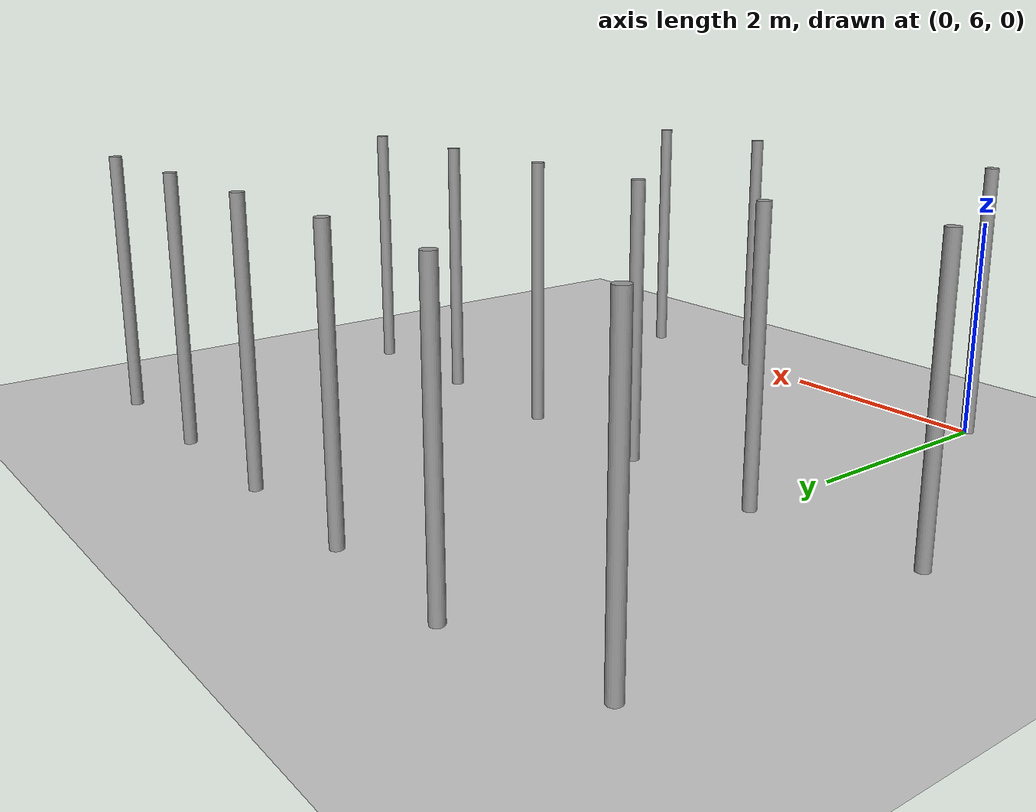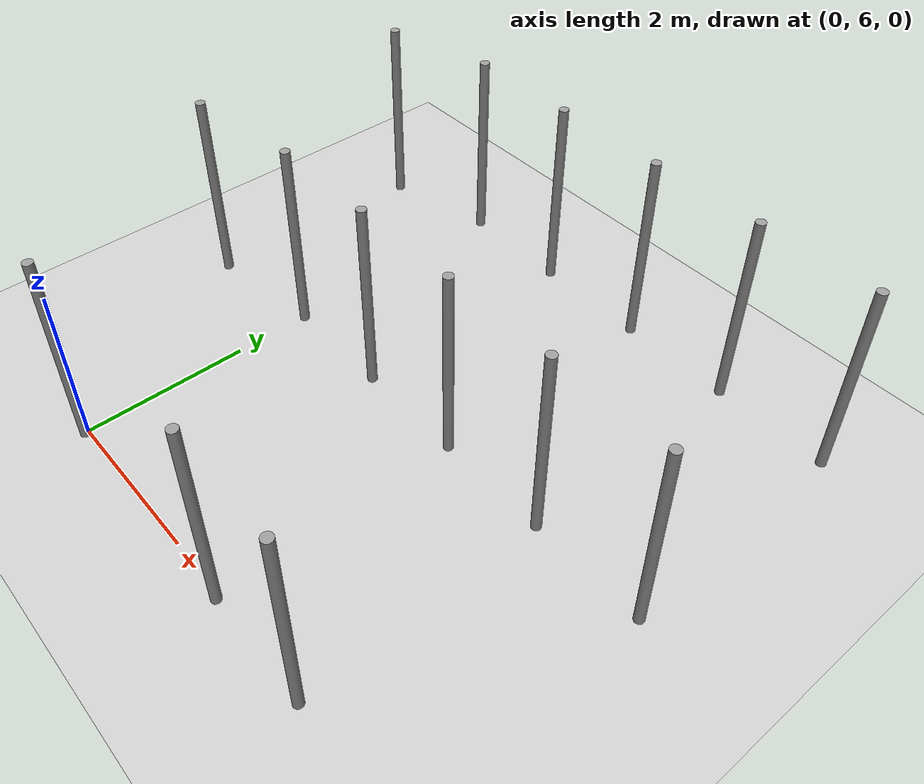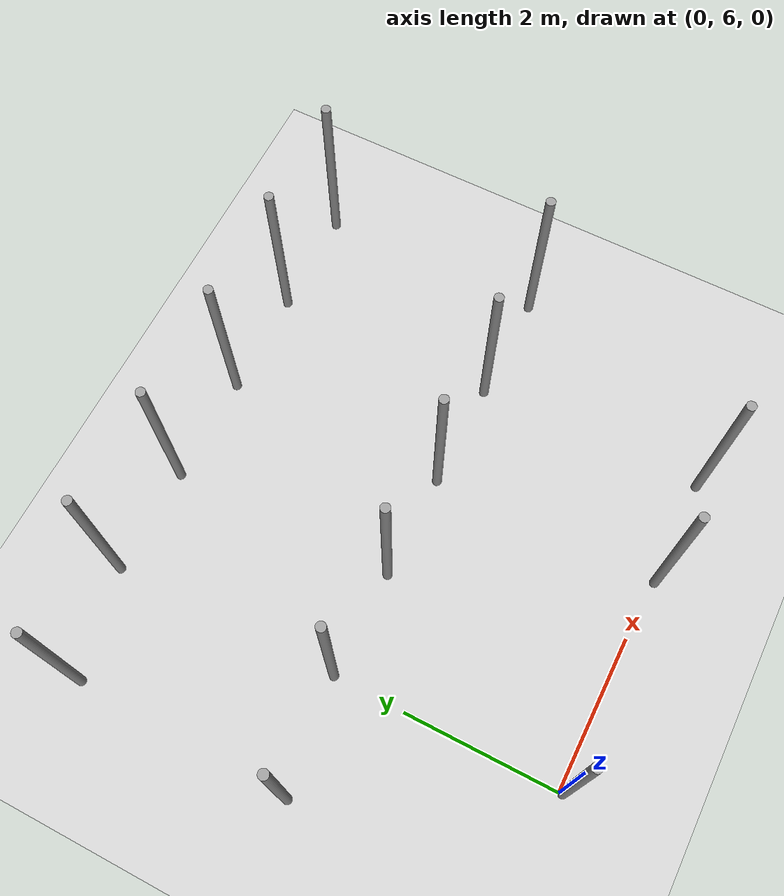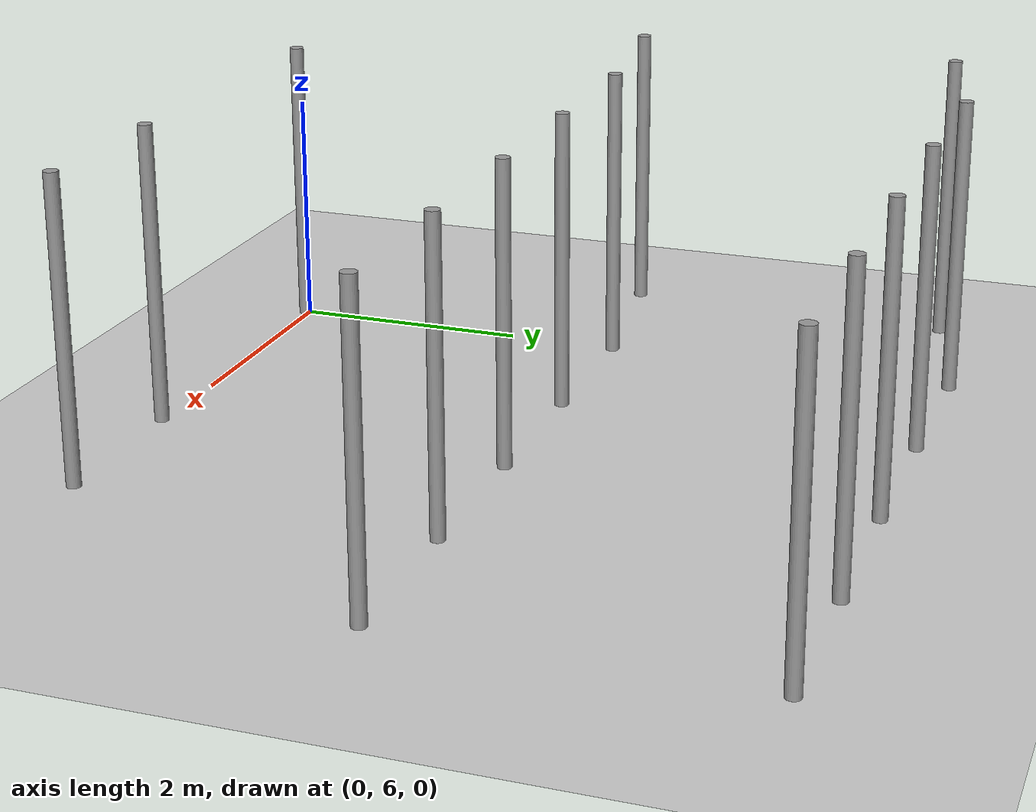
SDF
<sdf version="1.6">
 <world name="default">
  <model name="ground_plane">
   <static>1</static>
   <link name="link">
    <collision name="collision">
     <geometry><plane><normal>0 0 1</normal><size>100 100</size></plane></geometry>
     <surface><friction><ode><mu>100</mu><mu2>50</mu2></ode></friction></surface>
    </collision>
    <visual name="visual">
     <cast_shadows>0</cast_shadows>
     <geometry><plane><normal>0 0 1</normal><size>100 100</size></plane></geometry>
     <material>
      <script><uri>file://media/materials/scripts/gazebo.material</uri><name>Gazebo/Grey</name></script>
     </material>
    </visual>
   </link>
  </model>
  <model name="pole">
   <link name="link_0">
    <inertial>
     <mass>0.0364582</mass>
     <inertia>
      <ixx>0.00312124</ixx>
      <ixy>0</ixy>
      <ixz>0</ixz>
      <iyy>0.00312124</iyy>
      <iyz>0</iyz>
      <izz>0.00016615</izz>
     </inertia>
    </inertial>
    <visual name="visual">
     <geometry><cylinder><radius>0.06</radius><length>2.5</length></cylinder></geometry>
     <material>
      <lighting>1</lighting>
      <script><uri>file://media/materials/scripts/gazebo.material</uri><name>Gazebo/Grey</name></script>
      <ambient>0.3 0.3 0.3 1</ambient>
      <diffuse>0.7 0.7 0.7 1</diffuse>
      <specular>0.01 0.01 0.01 1</specular>
      <emissive>0 0 0 1</emissive>
      <shader type="vertex"><normal_map>__default__</normal_map></shader>
     </material>
    </visual>
    <collision name="collision">
     <geometry><cylinder><radius>0.06</radius><length>2.5</length></cylinder></geometry>
     <surface>
      <friction>
       <ode><mu>1</mu><mu2>1</mu2><fdir1>0 0 0</fdir1><slip1>0</slip1><slip2>0</slip2></ode>
       <torsional>
        <coefficient>1</coefficient>
        <patch_radius>0</patch_radius>
        <surface_radius>0</surface_radius>
        <use_patch_radius>1</use_patch_radius>
        <ode><slip>0</slip></ode>
       </torsional>
      </friction>
      <bounce><restitution_coefficient>0</restitution_coefficient><threshold>1e+06</threshold></bounce>
      <contact>
       <collide_without_contact>0</collide_without_contact>
       <collide_without_contact_bitmask>1</collide_without_contact_bitmask>
       <collide_bitmask>1</collide_bitmask>
       <ode>
        <soft_cfm>0</soft_cfm>
        <soft_erp>0.2</soft_erp>
        <kp>1e+13</kp>
        <kd>1</kd>
        <max_vel>0.01</max_vel>
        <min_depth>0</min_depth>
       </ode>
       <bullet>
        <split_impulse>1</split_impulse>
        <split_impulse_penetration_threshold>-0.01</split_impulse_penetration_threshold>
        <soft_cfm>0</soft_cfm>
        <soft_erp>0.2</soft_erp>
        <kp>1e+13</kp>
        <kd>1</kd>
       </bullet>
      </contact>
     </surface>
    </collision>
   </link>
   <static>0</static>
   <pose>0.00672 5.96133 1.24999 -0 1e-06 -0.016912</pose>
  </model>
  <model name="pole_0">
   <link name="link_0">
    <inertial>
     <mass>0.0364582</mass>
     <inertia>
      <ixx>0.00312124</ixx>
      <ixy>0</ixy>
      <ixz>0</ixz>
      <iyy>0.00312124</iyy>
      <iyz>0</iyz>
      <izz>0.00016615</izz>
     </inertia>
    </inertial>
    <visual name="visual">
     <geometry><cylinder><radius>0.06</radius><length>2.5</length></cylinder></geometry>
     <material>
      <lighting>1</lighting>
      <script><uri>file://media/materials/scripts/gazebo.material</uri><name>Gazebo/Grey</name></script>
      <ambient>0.3 0.3 0.3 1</ambient>
      <diffuse>0.7 0.7 0.7 1</diffuse>
      <specular>0.01 0.01 0.01 1</specular>
      <emissive>0 0 0 1</emissive>
      <shader type="vertex"><normal_map>__default__</normal_map></shader>
     </material>
    </visual>
    <collision name="collision">
     <geometry><cylinder><radius>0.06</radius><length>2.5</length></cylinder></geometry>
     <surface>
      <friction>
       <ode><mu>1</mu><mu2>1</mu2><fdir1>0 0 0</fdir1><slip1>0</slip1><slip2>0</slip2></ode>
       <torsional>
        <coefficient>1</coefficient>
        <patch_radius>0</patch_radius>
        <surface_radius>0</surface_radius>
        <use_patch_radius>1</use_patch_radius>
        <ode><slip>0</slip></ode>
       </torsional>
      </friction>
      <bounce><restitution_coefficient>0</restitution_coefficient><threshold>1e+06</threshold></bounce>
      <contact>
       <collide_without_contact>0</collide_without_contact>
       <collide_without_contact_bitmask>1</collide_without_contact_bitmask>
       <collide_bitmask>1</collide_bitmask>
       <ode>
        <soft_cfm>0</soft_cfm>
        <soft_erp>0.2</soft_erp>
        <kp>1e+13</kp>
        <kd>1</kd>
        <max_vel>0.01</max_vel>
        <min_depth>0</min_depth>
       </ode>
       <bullet>
        <split_impulse>1</split_impulse>
        <split_impulse_penetration_threshold>-0.01</split_impulse_penetration_threshold>
        <soft_cfm>0</soft_cfm>
        <soft_erp>0.2</soft_erp>
        <kp>1e+13</kp>
        <kd>1</kd>
       </bullet>
      </contact>
     </surface>
    </collision>
   </link>
   <static>0</static>
   <pose>0.01352 8.94146 1.24999 -0 2e-06 -0.019336</pose>
  </model>
  <model name="pole_1">
   <link name="link_0">
    <inertial>
     <mass>0.0364582</mass>
     <inertia>
      <ixx>0.00312124</ixx>
      <ixy>0</ixy>
      <ixz>0</ixz>
      <iyy>0.00312124</iyy>
      <iyz>0</iyz>
      <izz>0.00016615</izz>
     </inertia>
    </inertial>
    <visual name="visual">
     <geometry><cylinder><radius>0.06</radius><length>2.5</length></cylinder></geometry>
     <material>
      <lighting>1</lighting>
      <script><uri>file://media/materials/scripts/gazebo.material</uri><name>Gazebo/Grey</name></script>
      <ambient>0.3 0.3 0.3 1</ambient>
      <diffuse>0.7 0.7 0.7 1</diffuse>
      <specular>0.01 0.01 0.01 1</specular>
      <emissive>0 0 0 1</emissive>
      <shader type="vertex"><normal_map>__default__</normal_map></shader>
     </material>
    </visual>
    <collision name="collision">
     <geometry><cylinder><radius>0.06</radius><length>2.5</length></cylinder></geometry>
     <surface>
      <friction>
       <ode><mu>1</mu><mu2>1</mu2><fdir1>0 0 0</fdir1><slip1>0</slip1><slip2>0</slip2></ode>
       <torsional>
        <coefficient>1</coefficient>
        <patch_radius>0</patch_radius>
        <surface_radius>0</surface_radius>
        <use_patch_radius>1</use_patch_radius>
        <ode><slip>0</slip></ode>
       </torsional>
      </friction>
      <bounce><restitution_coefficient>0</restitution_coefficient><threshold>1e+06</threshold></bounce>
      <contact>
       <collide_without_contact>0</collide_without_contact>
       <collide_without_contact_bitmask>1</collide_without_contact_bitmask>
       <collide_bitmask>1</collide_bitmask>
       <ode>
        <soft_cfm>0</soft_cfm>
        <soft_erp>0.2</soft_erp>
        <kp>1e+13</kp>
        <kd>1</kd>
        <max_vel>0.01</max_vel>
        <min_depth>0</min_depth>
       </ode>
       <bullet>
        <split_impulse>1</split_impulse>
        <split_impulse_penetration_threshold>-0.01</split_impulse_penetration_threshold>
        <soft_cfm>0</soft_cfm>
        <soft_erp>0.2</soft_erp>
        <kp>1e+13</kp>
        <kd>1</kd>
       </bullet>
      </contact>
     </surface>
    </collision>
   </link>
   <static>0</static>
   <pose>-0.008115 11.9213 1.24999 -1e-06 -0 -0.018597</pose>
  </model>
  <model name="pole_13">
   <link name="link_0">
    <inertial>
     <mass>0.0364582</mass>
     <inertia>
      <ixx>0.00312124</ixx>
      <ixy>0</ixy>
      <ixz>0</ixz>
      <iyy>0.00312124</iyy>
      <iyz>0</iyz>
      <izz>0.00016615</izz>
     </inertia>
    </inertial>
    <visual name="visual">
     <geometry><cylinder><radius>0.06</radius><length>2.5</length></cylinder></geometry>
     <material>
      <lighting>1</lighting>
      <script><uri>file://media/materials/scripts/gazebo.material</uri><name>Gazebo/Grey</name></script>
      <ambient>0.3 0.3 0.3 1</ambient>
      <diffuse>0.7 0.7 0.7 1</diffuse>
      <specular>0.01 0.01 0.01 1</specular>
      <emissive>0 0 0 1</emissive>
      <shader type="vertex"><normal_map>__default__</normal_map></shader>
     </material>
    </visual>
    <collision name="collision">
     <geometry><cylinder><radius>0.06</radius><length>2.5</length></cylinder></geometry>
     <surface>
      <friction>
       <ode><mu>1</mu><mu2>1</mu2><fdir1>0 0 0</fdir1><slip1>0</slip1><slip2>0</slip2></ode>
       <torsional>
        <coefficient>1</coefficient>
        <patch_radius>0</patch_radius>
        <surface_radius>0</surface_radius>
        <use_patch_radius>1</use_patch_radius>
        <ode><slip>0</slip></ode>
       </torsional>
      </friction>
      <bounce><restitution_coefficient>0</restitution_coefficient><threshold>1e+06</threshold></bounce>
      <contact>
       <collide_without_contact>0</collide_without_contact>
       <collide_without_contact_bitmask>1</collide_without_contact_bitmask>
       <collide_bitmask>1</collide_bitmask>
       <ode>
        <soft_cfm>0</soft_cfm>
        <soft_erp>0.2</soft_erp>
        <kp>1e+13</kp>
        <kd>1</kd>
        <max_vel>0.01</max_vel>
        <min_depth>0</min_depth>
       </ode>
       <bullet>
        <split_impulse>1</split_impulse>
        <split_impulse_penetration_threshold>-0.01</split_impulse_penetration_threshold>
        <soft_cfm>0</soft_cfm>
        <soft_erp>0.2</soft_erp>
        <kp>1e+13</kp>
        <kd>1</kd>
       </bullet>
      </contact>
     </surface>
    </collision>
   </link>
   <static>0</static>
   <pose>2.80802 5.9612 1.24999 -1e-06 1e-06 -0.012267</pose>
  </model>
  <model name="pole_14">
   <link name="link_0">
    <inertial>
     <mass>0.0364582</mass>
     <inertia>
      <ixx>0.00312124</ixx>
      <ixy>0</ixy>
      <ixz>0</ixz>
      <iyy>0.00312124</iyy>
      <iyz>0</iyz>
      <izz>0.00016615</izz>
     </inertia>
    </inertial>
    <visual name="visual">
     <geometry><cylinder><radius>0.06</radius><length>2.5</length></cylinder></geometry>
     <material>
      <lighting>1</lighting>
      <script><uri>file://media/materials/scripts/gazebo.material</uri><name>Gazebo/Grey</name></script>
      <ambient>0.3 0.3 0.3 1</ambient>
      <diffuse>0.7 0.7 0.7 1</diffuse>
      <specular>0.01 0.01 0.01 1</specular>
      <emissive>0 0 0 1</emissive>
      <shader type="vertex"><normal_map>__default__</normal_map></shader>
     </material>
    </visual>
    <collision name="collision">
     <geometry><cylinder><radius>0.06</radius><length>2.5</length></cylinder></geometry>
     <surface>
      <friction>
       <ode><mu>1</mu><mu2>1</mu2><fdir1>0 0 0</fdir1><slip1>0</slip1><slip2>0</slip2></ode>
       <torsional>
        <coefficient>1</coefficient>
        <patch_radius>0</patch_radius>
        <surface_radius>0</surface_radius>
        <use_patch_radius>1</use_patch_radius>
        <ode><slip>0</slip></ode>
       </torsional>
      </friction>
      <bounce><restitution_coefficient>0</restitution_coefficient><threshold>1e+06</threshold></bounce>
      <contact>
       <collide_without_contact>0</collide_without_contact>
       <collide_without_contact_bitmask>1</collide_without_contact_bitmask>
       <collide_bitmask>1</collide_bitmask>
       <ode>
        <soft_cfm>0</soft_cfm>
        <soft_erp>0.2</soft_erp>
        <kp>1e+13</kp>
        <kd>1</kd>
        <max_vel>0.01</max_vel>
        <min_depth>0</min_depth>
       </ode>
       <bullet>
        <split_impulse>1</split_impulse>
        <split_impulse_penetration_threshold>-0.01</split_impulse_penetration_threshold>
        <soft_cfm>0</soft_cfm>
        <soft_erp>0.2</soft_erp>
        <kp>1e+13</kp>
        <kd>1</kd>
       </bullet>
      </contact>
     </surface>
    </collision>
   </link>
   <static>0</static>
   <pose>4.21951 5.96117 1.25 -1e-06 1e-06 -0.011841</pose>
  </model>
  <model name="pole_16">
   <link name="link_0">
    <inertial>
     <mass>0.0364582</mass>
     <inertia>
      <ixx>0.00312124</ixx>
      <ixy>0</ixy>
      <ixz>0</ixz>
      <iyy>0.00312124</iyy>
      <iyz>0</iyz>
      <izz>0.00016615</izz>
     </inertia>
    </inertial>
    <visual name="visual">
     <geometry><cylinder><radius>0.06</radius><length>2.5</length></cylinder></geometry>
     <material>
      <lighting>1</lighting>
      <script><uri>file://media/materials/scripts/gazebo.material</uri><name>Gazebo/Grey</name></script>
      <ambient>0.3 0.3 0.3 1</ambient>
      <diffuse>0.7 0.7 0.7 1</diffuse>
      <specular>0.01 0.01 0.01 1</specular>
      <emissive>0 0 0 1</emissive>
      <shader type="vertex"><normal_map>__default__</normal_map></shader>
     </material>
    </visual>
    <collision name="collision">
     <geometry><cylinder><radius>0.06</radius><length>2.5</length></cylinder></geometry>
     <surface>
      <friction>
       <ode><mu>1</mu><mu2>1</mu2><fdir1>0 0 0</fdir1><slip1>0</slip1><slip2>0</slip2></ode>
       <torsional>
        <coefficient>1</coefficient>
        <patch_radius>0</patch_radius>
        <surface_radius>0</surface_radius>
        <use_patch_radius>1</use_patch_radius>
        <ode><slip>0</slip></ode>
       </torsional>
      </friction>
      <bounce><restitution_coefficient>0</restitution_coefficient><threshold>1e+06</threshold></bounce>
      <contact>
       <collide_without_contact>0</collide_without_contact>
       <collide_without_contact_bitmask>1</collide_without_contact_bitmask>
       <collide_bitmask>1</collide_bitmask>
       <ode>
        <soft_cfm>0</soft_cfm>
        <soft_erp>0.2</soft_erp>
        <kp>1e+13</kp>
        <kd>1</kd>
        <max_vel>0.01</max_vel>
        <min_depth>0</min_depth>
       </ode>
       <bullet>
        <split_impulse>1</split_impulse>
        <split_impulse_penetration_threshold>-0.01</split_impulse_penetration_threshold>
        <soft_cfm>0</soft_cfm>
        <soft_erp>0.2</soft_erp>
        <kp>1e+13</kp>
        <kd>1</kd>
       </bullet>
      </contact>
     </surface>
    </collision>
   </link>
   <static>0</static>
   <pose>1.41313 8.94082 1.25 0 1e-06 -0.013511</pose>
  </model>
  <model name="pole_17">
   <link name="link_0">
    <inertial>
     <mass>0.0364582</mass>
     <inertia>
      <ixx>0.00312124</ixx>
      <ixy>0</ixy>
      <ixz>0</ixz>
      <iyy>0.00312124</iyy>
      <iyz>0</iyz>
      <izz>0.00016615</izz>
     </inertia>
    </inertial>
    <visual name="visual">
     <geometry><cylinder><radius>0.06</radius><length>2.5</length></cylinder></geometry>
     <material>
      <lighting>1</lighting>
      <script><uri>file://media/materials/scripts/gazebo.material</uri><name>Gazebo/Grey</name></script>
      <ambient>0.3 0.3 0.3 1</ambient>
      <diffuse>0.7 0.7 0.7 1</diffuse>
      <specular>0.01 0.01 0.01 1</specular>
      <emissive>0 0 0 1</emissive>
      <shader type="vertex"><normal_map>__default__</normal_map></shader>
     </material>
    </visual>
    <collision name="collision">
     <geometry><cylinder><radius>0.06</radius><length>2.5</length></cylinder></geometry>
     <surface>
      <friction>
       <ode><mu>1</mu><mu2>1</mu2><fdir1>0 0 0</fdir1><slip1>0</slip1><slip2>0</slip2></ode>
       <torsional>
        <coefficient>1</coefficient>
        <patch_radius>0</patch_radius>
        <surface_radius>0</surface_radius>
        <use_patch_radius>1</use_patch_radius>
        <ode><slip>0</slip></ode>
       </torsional>
      </friction>
      <bounce><restitution_coefficient>0</restitution_coefficient><threshold>1e+06</threshold></bounce>
      <contact>
       <collide_without_contact>0</collide_without_contact>
       <collide_without_contact_bitmask>1</collide_without_contact_bitmask>
       <collide_bitmask>1</collide_bitmask>
       <ode>
        <soft_cfm>0</soft_cfm>
        <soft_erp>0.2</soft_erp>
        <kp>1e+13</kp>
        <kd>1</kd>
        <max_vel>0.01</max_vel>
        <min_depth>0</min_depth>
       </ode>
       <bullet>
        <split_impulse>1</split_impulse>
        <split_impulse_penetration_threshold>-0.01</split_impulse_penetration_threshold>
        <soft_cfm>0</soft_cfm>
        <soft_erp>0.2</soft_erp>
        <kp>1e+13</kp>
        <kd>1</kd>
       </bullet>
      </contact>
     </surface>
    </collision>
   </link>
   <static>0</static>
   <pose>2.79987 8.94083 1.25 1e-06 1e-06 -0.010654</pose>
  </model>
  <model name="pole_18">
   <link name="link_0">
    <inertial>
     <mass>0.0364582</mass>
     <inertia>
      <ixx>0.00312124</ixx>
      <ixy>0</ixy>
      <ixz>0</ixz>
      <iyy>0.00312124</iyy>
      <iyz>0</iyz>
      <izz>0.00016615</izz>
     </inertia>
    </inertial>
    <visual name="visual">
     <geometry><cylinder><radius>0.06</radius><length>2.5</length></cylinder></geometry>
     <material>
      <lighting>1</lighting>
      <script><uri>file://media/materials/scripts/gazebo.material</uri><name>Gazebo/Grey</name></script>
      <ambient>0.3 0.3 0.3 1</ambient>
      <diffuse>0.7 0.7 0.7 1</diffuse>
      <specular>0.01 0.01 0.01 1</specular>
      <emissive>0 0 0 1</emissive>
      <shader type="vertex"><normal_map>__default__</normal_map></shader>
     </material>
    </visual>
    <collision name="collision">
     <geometry><cylinder><radius>0.06</radius><length>2.5</length></cylinder></geometry>
     <surface>
      <friction>
       <ode><mu>1</mu><mu2>1</mu2><fdir1>0 0 0</fdir1><slip1>0</slip1><slip2>0</slip2></ode>
       <torsional>
        <coefficient>1</coefficient>
        <patch_radius>0</patch_radius>
        <surface_radius>0</surface_radius>
        <use_patch_radius>1</use_patch_radius>
        <ode><slip>0</slip></ode>
       </torsional>
      </friction>
      <bounce><restitution_coefficient>0</restitution_coefficient><threshold>1e+06</threshold></bounce>
      <contact>
       <collide_without_contact>0</collide_without_contact>
       <collide_without_contact_bitmask>1</collide_without_contact_bitmask>
       <collide_bitmask>1</collide_bitmask>
       <ode>
        <soft_cfm>0</soft_cfm>
        <soft_erp>0.2</soft_erp>
        <kp>1e+13</kp>
        <kd>1</kd>
        <max_vel>0.01</max_vel>
        <min_depth>0</min_depth>
       </ode>
       <bullet>
        <split_impulse>1</split_impulse>
        <split_impulse_penetration_threshold>-0.01</split_impulse_penetration_threshold>
        <soft_cfm>0</soft_cfm>
        <soft_erp>0.2</soft_erp>
        <kp>1e+13</kp>
        <kd>1</kd>
       </bullet>
      </contact>
     </surface>
    </collision>
   </link>
   <static>0</static>
   <pose>4.20389 8.94089 1.24999 -1e-06 -0 -0.00885</pose>
  </model>
  <model name="pole_19">
   <link name="link_0">
    <inertial>
     <mass>0.0364582</mass>
     <inertia>
      <ixx>0.00312124</ixx>
      <ixy>0</ixy>
      <ixz>0</ixz>
      <iyy>0.00312124</iyy>
      <iyz>0</iyz>
      <izz>0.00016615</izz>
     </inertia>
    </inertial>
    <visual name="visual">
     <geometry><cylinder><radius>0.06</radius><length>2.5</length></cylinder></geometry>
     <material>
      <lighting>1</lighting>
      <script><uri>file://media/materials/scripts/gazebo.material</uri><name>Gazebo/Grey</name></script>
      <ambient>0.3 0.3 0.3 1</ambient>
      <diffuse>0.7 0.7 0.7 1</diffuse>
      <specular>0.01 0.01 0.01 1</specular>
      <emissive>0 0 0 1</emissive>
      <shader type="vertex"><normal_map>__default__</normal_map></shader>
     </material>
    </visual>
    <collision name="collision">
     <geometry><cylinder><radius>0.06</radius><length>2.5</length></cylinder></geometry>
     <surface>
      <friction>
       <ode><mu>1</mu><mu2>1</mu2><fdir1>0 0 0</fdir1><slip1>0</slip1><slip2>0</slip2></ode>
       <torsional>
        <coefficient>1</coefficient>
        <patch_radius>0</patch_radius>
        <surface_radius>0</surface_radius>
        <use_patch_radius>1</use_patch_radius>
        <ode><slip>0</slip></ode>
       </torsional>
      </friction>
      <bounce><restitution_coefficient>0</restitution_coefficient><threshold>1e+06</threshold></bounce>
      <contact>
       <collide_without_contact>0</collide_without_contact>
       <collide_without_contact_bitmask>1</collide_without_contact_bitmask>
       <collide_bitmask>1</collide_bitmask>
       <ode>
        <soft_cfm>0</soft_cfm>
        <soft_erp>0.2</soft_erp>
        <kp>1e+13</kp>
        <kd>1</kd>
        <max_vel>0.01</max_vel>
        <min_depth>0</min_depth>
       </ode>
       <bullet>
        <split_impulse>1</split_impulse>
        <split_impulse_penetration_threshold>-0.01</split_impulse_penetration_threshold>
        <soft_cfm>0</soft_cfm>
        <soft_erp>0.2</soft_erp>
        <kp>1e+13</kp>
        <kd>1</kd>
       </bullet>
      </contact>
     </surface>
    </collision>
   </link>
   <static>0</static>
   <pose>5.62936 8.94079 1.24999 0 1e-06 -0.010573</pose>
  </model>
  <model name="pole_20">
   <link name="link_0">
    <inertial>
     <mass>0.0364582</mass>
     <inertia>
      <ixx>0.00312124</ixx>
      <ixy>0</ixy>
      <ixz>0</ixz>
      <iyy>0.00312124</iyy>
      <iyz>0</iyz>
      <izz>0.00016615</izz>
     </inertia>
    </inertial>
    <visual name="visual">
     <geometry><cylinder><radius>0.06</radius><length>2.5</length></cylinder></geometry>
     <material>
      <lighting>1</lighting>
      <script><uri>file://media/materials/scripts/gazebo.material</uri><name>Gazebo/Grey</name></script>
      <ambient>0.3 0.3 0.3 1</ambient>
      <diffuse>0.7 0.7 0.7 1</diffuse>
      <specular>0.01 0.01 0.01 1</specular>
      <emissive>0 0 0 1</emissive>
      <shader type="vertex"><normal_map>__default__</normal_map></shader>
     </material>
    </visual>
    <collision name="collision">
     <geometry><cylinder><radius>0.06</radius><length>2.5</length></cylinder></geometry>
     <surface>
      <friction>
       <ode><mu>1</mu><mu2>1</mu2><fdir1>0 0 0</fdir1><slip1>0</slip1><slip2>0</slip2></ode>
       <torsional>
        <coefficient>1</coefficient>
        <patch_radius>0</patch_radius>
        <surface_radius>0</surface_radius>
        <use_patch_radius>1</use_patch_radius>
        <ode><slip>0</slip></ode>
       </torsional>
      </friction>
      <bounce><restitution_coefficient>0</restitution_coefficient><threshold>1e+06</threshold></bounce>
      <contact>
       <collide_without_contact>0</collide_without_contact>
       <collide_without_contact_bitmask>1</collide_without_contact_bitmask>
       <collide_bitmask>1</collide_bitmask>
       <ode>
        <soft_cfm>0</soft_cfm>
        <soft_erp>0.2</soft_erp>
        <kp>1e+13</kp>
        <kd>1</kd>
        <max_vel>0.01</max_vel>
        <min_depth>0</min_depth>
       </ode>
       <bullet>
        <split_impulse>1</split_impulse>
        <split_impulse_penetration_threshold>-0.01</split_impulse_penetration_threshold>
        <soft_cfm>0</soft_cfm>
        <soft_erp>0.2</soft_erp>
        <kp>1e+13</kp>
        <kd>1</kd>
       </bullet>
      </contact>
     </surface>
    </collision>
   </link>
   <static>0</static>
   <pose>1.39579 11.9007 1.25 0 -2e-06 -0.006602</pose>
  </model>
  <model name="pole_21">
   <link name="link_0">
    <inertial>
     <mass>0.0364582</mass>
     <inertia>
      <ixx>0.00312124</ixx>
      <ixy>0</ixy>
      <ixz>0</ixz>
      <iyy>0.00312124</iyy>
      <iyz>0</iyz>
      <izz>0.00016615</izz>
     </inertia>
    </inertial>
    <visual name="visual">
     <geometry><cylinder><radius>0.06</radius><length>2.5</length></cylinder></geometry>
     <material>
      <lighting>1</lighting>
      <script><uri>file://media/materials/scripts/gazebo.material</uri><name>Gazebo/Grey</name></script>
      <ambient>0.3 0.3 0.3 1</ambient>
      <diffuse>0.7 0.7 0.7 1</diffuse>
      <specular>0.01 0.01 0.01 1</specular>
      <emissive>0 0 0 1</emissive>
      <shader type="vertex"><normal_map>__default__</normal_map></shader>
     </material>
    </visual>
    <collision name="collision">
     <geometry><cylinder><radius>0.06</radius><length>2.5</length></cylinder></geometry>
     <surface>
      <friction>
       <ode><mu>1</mu><mu2>1</mu2><fdir1>0 0 0</fdir1><slip1>0</slip1><slip2>0</slip2></ode>
       <torsional>
        <coefficient>1</coefficient>
        <patch_radius>0</patch_radius>
        <surface_radius>0</surface_radius>
        <use_patch_radius>1</use_patch_radius>
        <ode><slip>0</slip></ode>
       </torsional>
      </friction>
      <bounce><restitution_coefficient>0</restitution_coefficient><threshold>1e+06</threshold></bounce>
      <contact>
       <collide_without_contact>0</collide_without_contact>
       <collide_without_contact_bitmask>1</collide_without_contact_bitmask>
       <collide_bitmask>1</collide_bitmask>
       <ode>
        <soft_cfm>0</soft_cfm>
        <soft_erp>0.2</soft_erp>
        <kp>1e+13</kp>
        <kd>1</kd>
        <max_vel>0.01</max_vel>
        <min_depth>0</min_depth>
       </ode>
       <bullet>
        <split_impulse>1</split_impulse>
        <split_impulse_penetration_threshold>-0.01</split_impulse_penetration_threshold>
        <soft_cfm>0</soft_cfm>
        <soft_erp>0.2</soft_erp>
        <kp>1e+13</kp>
        <kd>1</kd>
       </bullet>
      </contact>
     </surface>
    </collision>
   </link>
   <static>0</static>
   <pose>2.81811 11.8952 1.24998 -0.000118 0.000187 0.185425</pose>
  </model>
  <model name="pole_22">
   <link name="link_0">
    <inertial>
     <mass>0.0364582</mass>
     <inertia>
      <ixx>0.00312124</ixx>
      <ixy>0</ixy>
      <ixz>0</ixz>
      <iyy>0.00312124</iyy>
      <iyz>0</iyz>
      <izz>0.00016615</izz>
     </inertia>
    </inertial>
    <visual name="visual">
     <geometry><cylinder><radius>0.06</radius><length>2.5</length></cylinder></geometry>
     <material>
      <lighting>1</lighting>
      <script><uri>file://media/materials/scripts/gazebo.material</uri><name>Gazebo/Grey</name></script>
      <ambient>0.3 0.3 0.3 1</ambient>
      <diffuse>0.7 0.7 0.7 1</diffuse>
      <specular>0.01 0.01 0.01 1</specular>
      <emissive>0 0 0 1</emissive>
      <shader type="vertex"><normal_map>__default__</normal_map></shader>
     </material>
    </visual>
    <collision name="collision">
     <geometry><cylinder><radius>0.06</radius><length>2.5</length></cylinder></geometry>
     <surface>
      <friction>
       <ode><mu>1</mu><mu2>1</mu2><fdir1>0 0 0</fdir1><slip1>0</slip1><slip2>0</slip2></ode>
       <torsional>
        <coefficient>1</coefficient>
        <patch_radius>0</patch_radius>
        <surface_radius>0</surface_radius>
        <use_patch_radius>1</use_patch_radius>
        <ode><slip>0</slip></ode>
       </torsional>
      </friction>
      <bounce><restitution_coefficient>0</restitution_coefficient><threshold>1e+06</threshold></bounce>
      <contact>
       <collide_without_contact>0</collide_without_contact>
       <collide_without_contact_bitmask>1</collide_without_contact_bitmask>
       <collide_bitmask>1</collide_bitmask>
       <ode>
        <soft_cfm>0</soft_cfm>
        <soft_erp>0.2</soft_erp>
        <kp>1e+13</kp>
        <kd>1</kd>
        <max_vel>0.01</max_vel>
        <min_depth>0</min_depth>
       </ode>
       <bullet>
        <split_impulse>1</split_impulse>
        <split_impulse_penetration_threshold>-0.01</split_impulse_penetration_threshold>
        <soft_cfm>0</soft_cfm>
        <soft_erp>0.2</soft_erp>
        <kp>1e+13</kp>
        <kd>1</kd>
       </bullet>
      </contact>
     </surface>
    </collision>
   </link>
   <static>0</static>
   <pose>4.21208 11.9005 1.24999 -0 1e-06 -0.004025</pose>
  </model>
  <model name="pole_23">
   <link name="link_0">
    <inertial>
     <mass>0.0364582</mass>
     <inertia>
      <ixx>0.00312124</ixx>
      <ixy>0</ixy>
      <ixz>0</ixz>
      <iyy>0.00312124</iyy>
      <iyz>0</iyz>
      <izz>0.00016615</izz>
     </inertia>
    </inertial>
    <visual name="visual">
     <geometry><cylinder><radius>0.06</radius><length>2.5</length></cylinder></geometry>
     <material>
      <lighting>1</lighting>
      <script><uri>file://media/materials/scripts/gazebo.material</uri><name>Gazebo/Grey</name></script>
      <ambient>0.3 0.3 0.3 1</ambient>
      <diffuse>0.7 0.7 0.7 1</diffuse>
      <specular>0.01 0.01 0.01 1</specular>
      <emissive>0 0 0 1</emissive>
      <shader type="vertex"><normal_map>__default__</normal_map></shader>
     </material>
    </visual>
    <collision name="collision">
     <geometry><cylinder><radius>0.06</radius><length>2.5</length></cylinder></geometry>
     <surface>
      <friction>
       <ode><mu>1</mu><mu2>1</mu2><fdir1>0 0 0</fdir1><slip1>0</slip1><slip2>0</slip2></ode>
       <torsional>
        <coefficient>1</coefficient>
        <patch_radius>0</patch_radius>
        <surface_radius>0</surface_radius>
        <use_patch_radius>1</use_patch_radius>
        <ode><slip>0</slip></ode>
       </torsional>
      </friction>
      <bounce><restitution_coefficient>0</restitution_coefficient><threshold>1e+06</threshold></bounce>
      <contact>
       <collide_without_contact>0</collide_without_contact>
       <collide_without_contact_bitmask>1</collide_without_contact_bitmask>
       <collide_bitmask>1</collide_bitmask>
       <ode>
        <soft_cfm>0</soft_cfm>
        <soft_erp>0.2</soft_erp>
        <kp>1e+13</kp>
        <kd>1</kd>
        <max_vel>0.01</max_vel>
        <min_depth>0</min_depth>
       </ode>
       <bullet>
        <split_impulse>1</split_impulse>
        <split_impulse_penetration_threshold>-0.01</split_impulse_penetration_threshold>
        <soft_cfm>0</soft_cfm>
        <soft_erp>0.2</soft_erp>
        <kp>1e+13</kp>
        <kd>1</kd>
       </bullet>
      </contact>
     </surface>
    </collision>
   </link>
   <static>0</static>
   <pose>5.61608 11.9006 1.24999 -1e-06 -0 -0.006314</pose>
  </model>
  <model name="pole_2_clone_2">
   <link name="link_0">
    <inertial>
     <mass>0.0364582</mass>
     <inertia>
      <ixx>0.00312124</ixx>
      <ixy>0</ixy>
      <ixz>0</ixz>
      <iyy>0.00312124</iyy>
      <iyz>0</iyz>
      <izz>0.00016615</izz>
     </inertia>
    </inertial>
    <visual name="visual">
     <geometry><cylinder><radius>0.06</radius><length>2.5</length></cylinder></geometry>
     <material>
      <lighting>1</lighting>
      <script><uri>file://media/materials/scripts/gazebo.material</uri><name>Gazebo/Grey</name></script>
      <ambient>0.3 0.3 0.3 1</ambient>
      <diffuse>0.7 0.7 0.7 1</diffuse>
      <specular>0.01 0.01 0.01 1</specular>
      <emissive>0 0 0 1</emissive>
      <shader type="vertex"><normal_map>__default__</normal_map></shader>
     </material>
    </visual>
    <collision name="collision">
     <geometry><cylinder><radius>0.06</radius><length>2.5</length></cylinder></geometry>
     <surface>
      <friction>
       <ode><mu>1</mu><mu2>1</mu2><fdir1>0 0 0</fdir1><slip1>0</slip1><slip2>0</slip2></ode>
       <torsional>
        <coefficient>1</coefficient>
        <patch_radius>0</patch_radius>
        <surface_radius>0</surface_radius>
        <use_patch_radius>1</use_patch_radius>
        <ode><slip>0</slip></ode>
       </torsional>
      </friction>
      <bounce><restitution_coefficient>0</restitution_coefficient><threshold>1e+06</threshold></bounce>
      <contact>
       <collide_without_contact>0</collide_without_contact>
       <collide_without_contact_bitmask>1</collide_without_contact_bitmask>
       <collide_bitmask>1</collide_bitmask>
       <ode>
        <soft_cfm>0</soft_cfm>
        <soft_erp>0.2</soft_erp>
        <kp>1e+13</kp>
        <kd>1</kd>
        <max_vel>0.01</max_vel>
        <min_depth>0</min_depth>
       </ode>
       <bullet>
        <split_impulse>1</split_impulse>
        <split_impulse_penetration_threshold>-0.01</split_impulse_penetration_threshold>
        <soft_cfm>0</soft_cfm>
        <soft_erp>0.2</soft_erp>
        <kp>1e+13</kp>
        <kd>1</kd>
       </bullet>
      </contact>
     </surface>
    </collision>
   </link>
   <static>0</static>
   <pose>-1.47775 8.7523 1.25 0 1e-06 0.044878</pose>
  </model>
  <model name="pole_2_clone_3">
   <link name="link_0">
    <inertial>
     <mass>0.0364582</mass>
     <inertia>
      <ixx>0.00312124</ixx>
      <ixy>0</ixy>
      <ixz>0</ixz>
      <iyy>0.00312124</iyy>
      <iyz>0</iyz>
      <izz>0.00016615</izz>
     </inertia>
    </inertial>
    <visual name="visual">
     <geometry><cylinder><radius>0.06</radius><length>2.5</length></cylinder></geometry>
     <material>
      <lighting>1</lighting>
      <script><uri>file://media/materials/scripts/gazebo.material</uri><name>Gazebo/Grey</name></script>
      <ambient>0.3 0.3 0.3 1</ambient>
      <diffuse>0.7 0.7 0.7 1</diffuse>
      <specular>0.01 0.01 0.01 1</specular>
      <emissive>0 0 0 1</emissive>
      <shader type="vertex"><normal_map>__default__</normal_map></shader>
     </material>
    </visual>
    <collision name="collision">
     <geometry><cylinder><radius>0.06</radius><length>2.5</length></cylinder></geometry>
     <surface>
      <friction>
       <ode><mu>1</mu><mu2>1</mu2><fdir1>0 0 0</fdir1><slip1>0</slip1><slip2>0</slip2></ode>
       <torsional>
        <coefficient>1</coefficient>
        <patch_radius>0</patch_radius>
        <surface_radius>0</surface_radius>
        <use_patch_radius>1</use_patch_radius>
        <ode><slip>0</slip></ode>
       </torsional>
      </friction>
      <bounce><restitution_coefficient>0</restitution_coefficient><threshold>1e+06</threshold></bounce>
      <contact>
       <collide_without_contact>0</collide_without_contact>
       <collide_without_contact_bitmask>1</collide_without_contact_bitmask>
       <collide_bitmask>1</collide_bitmask>
       <ode>
        <soft_cfm>0</soft_cfm>
        <soft_erp>0.2</soft_erp>
        <kp>1e+13</kp>
        <kd>1</kd>
        <max_vel>0.01</max_vel>
        <min_depth>0</min_depth>
       </ode>
       <bullet>
        <split_impulse>1</split_impulse>
        <split_impulse_penetration_threshold>-0.01</split_impulse_penetration_threshold>
        <soft_cfm>0</soft_cfm>
        <soft_erp>0.2</soft_erp>
        <kp>1e+13</kp>
        <kd>1</kd>
       </bullet>
      </contact>
     </surface>
    </collision>
   </link>
   <static>0</static>
   <pose>-1.39997 11.6001 1.24999 0 -1e-06 0.044898</pose>
  </model>
 </world>
</sdf>
